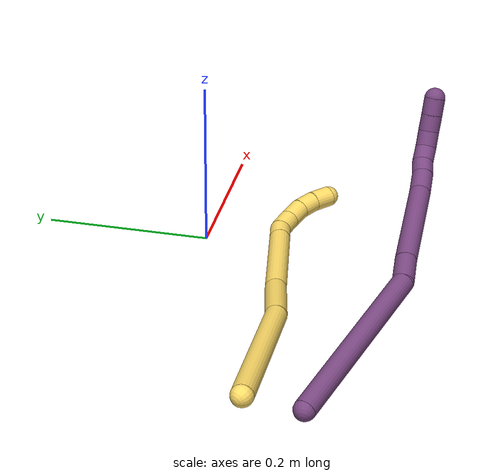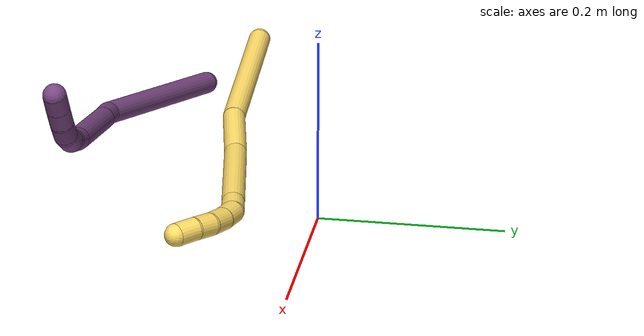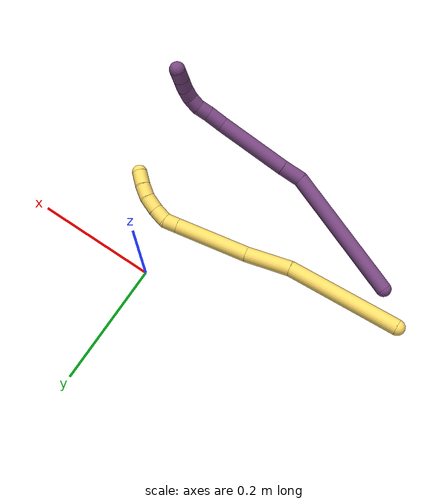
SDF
<sdf version="1.7">
 <world name="default">
  <model name="5">
   <static>0</static>
   <link name="5">
    <collision name="collision-cylinder-e_1_1_4">
     <pose>0.051833 -0.000489 0.076219 0.006413 0.597206 0.001974</pose>
     <geometry><cylinder><radius>0.0125</radius><length>0.18435</length></cylinder></geometry>
     <surface>
      <friction><ode><mu>1.16</mu><mu2>1.16</mu2><slip1>0</slip1><slip2>0</slip2></ode></friction>
      <contact><ode><kp>1e+06</kp><kd>1</kd><max_vel>0</max_vel><min_depth>0.001</min_depth></ode></contact>
     </surface>
    </collision>
    <visual name="visual-cylinder-e_1_1_4">
     <pose>0.051833 -0.000489 0.076219 0.006413 0.597206 0.001974</pose>
     <geometry><cylinder><radius>0.0125</radius><length>0.18435</length></cylinder></geometry>
     <material><ambient>1 0.858824 0.4 1</ambient></material>
    </visual>
    <collision name="collision-cylinder-e_2_4_5">
     <pose>0.129837 0.001488 0.17936 -0.09133 0.769162 -0.036986</pose>
     <geometry><cylinder><radius>0.0125</radius><length>0.075254</length></cylinder></geometry>
     <surface>
      <friction><ode><mu>1.16</mu><mu2>1.16</mu2><slip1>0</slip1><slip2>0</slip2></ode></friction>
      <contact><ode><kp>1e+06</kp><kd>1</kd><max_vel>0</max_vel><min_depth>0.001</min_depth></ode></contact>
     </surface>
    </collision>
    <visual name="visual-cylinder-e_2_4_5">
     <pose>0.129837 0.001488 0.17936 -0.09133 0.769162 -0.036986</pose>
     <geometry><cylinder><radius>0.0125</radius><length>0.075254</length></cylinder></geometry>
     <material><ambient>1 0.858824 0.4 1</ambient></material>
    </visual>
    <collision name="collision-cylinder-e_3_5_6">
     <pose>0.193559 0.012686 0.253413 -0.183196 0.66454 -0.06337</pose>
     <geometry><cylinder><radius>0.0125</radius><length>0.121782</length></cylinder></geometry>
     <surface>
      <friction><ode><mu>1.16</mu><mu2>1.16</mu2><slip1>0</slip1><slip2>0</slip2></ode></friction>
      <contact><ode><kp>1e+06</kp><kd>1</kd><max_vel>0</max_vel><min_depth>0.001</min_depth></ode></contact>
     </surface>
    </collision>
    <visual name="visual-cylinder-e_3_5_6">
     <pose>0.193559 0.012686 0.253413 -0.183196 0.66454 -0.06337</pose>
     <geometry><cylinder><radius>0.0125</radius><length>0.121782</length></cylinder></geometry>
     <material><ambient>1 0.858824 0.4 1</ambient></material>
    </visual>
    <collision name="collision-cylinder-e_4_6_7">
     <pose>0.237956 0.023377 0.309355 -0.218721 0.648879 -0.073822</pose>
     <geometry><cylinder><radius>0.0125</radius><length>0.022655</length></cylinder></geometry>
     <surface>
      <friction><ode><mu>1.16</mu><mu2>1.16</mu2><slip1>0</slip1><slip2>0</slip2></ode></friction>
      <contact><ode><kp>1e+06</kp><kd>1</kd><max_vel>0</max_vel><min_depth>0.001</min_depth></ode></contact>
     </surface>
    </collision>
    <visual name="visual-cylinder-e_4_6_7">
     <pose>0.237956 0.023377 0.309355 -0.218721 0.648879 -0.073822</pose>
     <geometry><cylinder><radius>0.0125</radius><length>0.022655</length></cylinder></geometry>
     <material><ambient>1 0.858824 0.4 1</ambient></material>
    </visual>
    <collision name="collision-cylinder-e_5_7_8">
     <pose>0.247824 0.025417 0.329647 -0.007154 0.257466 -0.000926</pose>
     <geometry><cylinder><radius>0.0125</radius><length>0.023747</length></cylinder></geometry>
     <surface>
      <friction><ode><mu>1.16</mu><mu2>1.16</mu2><slip1>0</slip1><slip2>0</slip2></ode></friction>
      <contact><ode><kp>1e+06</kp><kd>1</kd><max_vel>0</max_vel><min_depth>0.001</min_depth></ode></contact>
     </surface>
    </collision>
    <visual name="visual-cylinder-e_5_7_8">
     <pose>0.247824 0.025417 0.329647 -0.007154 0.257466 -0.000926</pose>
     <geometry><cylinder><radius>0.0125</radius><length>0.023747</length></cylinder></geometry>
     <material><ambient>1 0.858824 0.4 1</ambient></material>
    </visual>
    <collision name="collision-cylinder-e_6_8_9">
     <pose>0.252465 0.02556 0.353677 -0.004816 0.128164 -0.000309</pose>
     <geometry><cylinder><radius>0.0125</radius><length>0.025304</length></cylinder></geometry>
     <surface>
      <friction><ode><mu>1.16</mu><mu2>1.16</mu2><slip1>0</slip1><slip2>0</slip2></ode></friction>
      <contact><ode><kp>1e+06</kp><kd>1</kd><max_vel>0</max_vel><min_depth>0.001</min_depth></ode></contact>
     </surface>
    </collision>
    <visual name="visual-cylinder-e_6_8_9">
     <pose>0.252465 0.02556 0.353677 -0.004816 0.128164 -0.000309</pose>
     <geometry><cylinder><radius>0.0125</radius><length>0.025304</length></cylinder></geometry>
     <material><ambient>1 0.858824 0.4 1</ambient></material>
    </visual>
    <collision name="collision-cylinder-e_7_9_10">
     <pose>0.25342 0.023905 0.377263 0.154112 -0.059141 -0.004568</pose>
     <geometry><cylinder><radius>0.0125</radius><length>0.02238</length></cylinder></geometry>
     <surface>
      <friction><ode><mu>1.16</mu><mu2>1.16</mu2><slip1>0</slip1><slip2>0</slip2></ode></friction>
      <contact><ode><kp>1e+06</kp><kd>1</kd><max_vel>0</max_vel><min_depth>0.001</min_depth></ode></contact>
     </surface>
    </collision>
    <visual name="visual-cylinder-e_7_9_10">
     <pose>0.25342 0.023905 0.377263 0.154112 -0.059141 -0.004568</pose>
     <geometry><cylinder><radius>0.0125</radius><length>0.02238</length></cylinder></geometry>
     <material><ambient>1 0.858824 0.4 1</ambient></material>
    </visual>
    <collision name="collision-cylinder-e_8_10_2">
     <pose>0.251443 0.018533 0.399933 0.304618 -0.107517 -0.016519</pose>
     <geometry><cylinder><radius>0.0125</radius><length>0.024529</length></cylinder></geometry>
     <surface>
      <friction><ode><mu>1.16</mu><mu2>1.16</mu2><slip1>0</slip1><slip2>0</slip2></ode></friction>
      <contact><ode><kp>1e+06</kp><kd>1</kd><max_vel>0</max_vel><min_depth>0.001</min_depth></ode></contact>
     </surface>
    </collision>
    <visual name="visual-cylinder-e_8_10_2">
     <pose>0.251443 0.018533 0.399933 0.304618 -0.107517 -0.016519</pose>
     <geometry><cylinder><radius>0.0125</radius><length>0.024529</length></cylinder></geometry>
     <material><ambient>1 0.858824 0.4 1</ambient></material>
    </visual>
    <collision name="collision-sphere-2">
     <pose>0.250127 0.014876 0.411565 0 -0 0</pose>
     <geometry><sphere><radius>0.0125</radius></sphere></geometry>
     <surface>
      <friction><ode><mu>1.16</mu><mu2>1.16</mu2><slip1>0</slip1><slip2>0</slip2></ode></friction>
      <contact><ode><kp>1e+06</kp><kd>1</kd><max_vel>0</max_vel><min_depth>0.001</min_depth></ode></contact>
     </surface>
    </collision>
    <visual name="visual-sphere-2">
     <pose>0.250127 0.014876 0.411565 0 -0 0</pose>
     <geometry><sphere><radius>0.0125</radius></sphere></geometry>
     <material><ambient>1 0.858824 0.4 1</ambient></material>
    </visual>
    <collision name="collision-sphere-10">
     <pose>0.252759 0.022191 0.388301 0 -0 0</pose>
     <geometry><sphere><radius>0.0125</radius></sphere></geometry>
     <surface>
      <friction><ode><mu>1.16</mu><mu2>1.16</mu2><slip1>0</slip1><slip2>0</slip2></ode></friction>
      <contact><ode><kp>1e+06</kp><kd>1</kd><max_vel>0</max_vel><min_depth>0.001</min_depth></ode></contact>
     </surface>
    </collision>
    <visual name="visual-sphere-10">
     <pose>0.252759 0.022191 0.388301 0 -0 0</pose>
     <geometry><sphere><radius>0.0125</radius></sphere></geometry>
     <material><ambient>1 0.858824 0.4 1</ambient></material>
    </visual>
    <collision name="collision-sphere-9">
     <pose>0.254082 0.02562 0.366225 0 -0 0</pose>
     <geometry><sphere><radius>0.0125</radius></sphere></geometry>
     <surface>
      <friction><ode><mu>1.16</mu><mu2>1.16</mu2><slip1>0</slip1><slip2>0</slip2></ode></friction>
      <contact><ode><kp>1e+06</kp><kd>1</kd><max_vel>0</max_vel><min_depth>0.001</min_depth></ode></contact>
     </surface>
    </collision>
    <visual name="visual-sphere-9">
     <pose>0.254082 0.02562 0.366225 0 -0 0</pose>
     <geometry><sphere><radius>0.0125</radius></sphere></geometry>
     <material><ambient>1 0.858824 0.4 1</ambient></material>
    </visual>
    <collision name="collision-sphere-4">
     <pose>0.103666 -0.000978 0.152438 0 -0 0</pose>
     <geometry><sphere><radius>0.0125</radius></sphere></geometry>
     <surface>
      <friction><ode><mu>1.16</mu><mu2>1.16</mu2><slip1>0</slip1><slip2>0</slip2></ode></friction>
      <contact><ode><kp>1e+06</kp><kd>1</kd><max_vel>0</max_vel><min_depth>0.001</min_depth></ode></contact>
     </surface>
    </collision>
    <visual name="visual-sphere-4">
     <pose>0.103666 -0.000978 0.152438 0 -0 0</pose>
     <geometry><sphere><radius>0.0125</radius></sphere></geometry>
     <material><ambient>1 0.858824 0.4 1</ambient></material>
    </visual>
    <collision name="collision-sphere-1">
     <geometry><sphere><radius>0.0125</radius></sphere></geometry>
     <surface>
      <friction><ode><mu>1.16</mu><mu2>1.16</mu2><slip1>0</slip1><slip2>0</slip2></ode></friction>
      <contact><ode><kp>1e+06</kp><kd>1</kd><max_vel>0</max_vel><min_depth>0.001</min_depth></ode></contact>
     </surface>
    </collision>
    <visual name="visual-sphere-1">
     <geometry><sphere><radius>0.0125</radius></sphere></geometry>
     <material><ambient>1 0.858824 0.4 1</ambient></material>
    </visual>
    <collision name="collision-sphere-8">
     <pose>0.250848 0.025499 0.341129 0 -0 0</pose>
     <geometry><sphere><radius>0.0125</radius></sphere></geometry>
     <surface>
      <friction><ode><mu>1.16</mu><mu2>1.16</mu2><slip1>0</slip1><slip2>0</slip2></ode></friction>
      <contact><ode><kp>1e+06</kp><kd>1</kd><max_vel>0</max_vel><min_depth>0.001</min_depth></ode></contact>
     </surface>
    </collision>
    <visual name="visual-sphere-8">
     <pose>0.250848 0.025499 0.341129 0 -0 0</pose>
     <geometry><sphere><radius>0.0125</radius></sphere></geometry>
     <material><ambient>1 0.858824 0.4 1</ambient></material>
    </visual>
    <collision name="collision-sphere-5">
     <pose>0.156008 0.003954 0.206282 0 -0 0</pose>
     <geometry><sphere><radius>0.0125</radius></sphere></geometry>
     <surface>
      <friction><ode><mu>1.16</mu><mu2>1.16</mu2><slip1>0</slip1><slip2>0</slip2></ode></friction>
      <contact><ode><kp>1e+06</kp><kd>1</kd><max_vel>0</max_vel><min_depth>0.001</min_depth></ode></contact>
     </surface>
    </collision>
    <visual name="visual-sphere-5">
     <pose>0.156008 0.003954 0.206282 0 -0 0</pose>
     <geometry><sphere><radius>0.0125</radius></sphere></geometry>
     <material><ambient>1 0.858824 0.4 1</ambient></material>
    </visual>
    <collision name="collision-sphere-6">
     <pose>0.23111 0.021418 0.300544 0 -0 0</pose>
     <geometry><sphere><radius>0.0125</radius></sphere></geometry>
     <surface>
      <friction><ode><mu>1.16</mu><mu2>1.16</mu2><slip1>0</slip1><slip2>0</slip2></ode></friction>
      <contact><ode><kp>1e+06</kp><kd>1</kd><max_vel>0</max_vel><min_depth>0.001</min_depth></ode></contact>
     </surface>
    </collision>
    <visual name="visual-sphere-6">
     <pose>0.23111 0.021418 0.300544 0 -0 0</pose>
     <geometry><sphere><radius>0.0125</radius></sphere></geometry>
     <material><ambient>1 0.858824 0.4 1</ambient></material>
    </visual>
    <collision name="collision-sphere-7">
     <pose>0.244801 0.025335 0.318165 0 -0 0</pose>
     <geometry><sphere><radius>0.0125</radius></sphere></geometry>
     <surface>
      <friction><ode><mu>1.16</mu><mu2>1.16</mu2><slip1>0</slip1><slip2>0</slip2></ode></friction>
      <contact><ode><kp>1e+06</kp><kd>1</kd><max_vel>0</max_vel><min_depth>0.001</min_depth></ode></contact>
     </surface>
    </collision>
    <visual name="visual-sphere-7">
     <pose>0.244801 0.025335 0.318165 0 -0 0</pose>
     <geometry><sphere><radius>0.0125</radius></sphere></geometry>
     <material><ambient>1 0.858824 0.4 1</ambient></material>
    </visual>
    <inertial>
     <pose>0.144803 0.008673 0.200897 0 -0 0</pose>
     <mass>0.5</mass>
     <inertia>
      <ixx>0.000609</ixx>
      <ixy>0</ixy>
      <ixz>0</ixz>
      <iyy>0.000724</iyy>
      <iyz>0</iyz>
      <izz>-0.000411</izz>
     </inertia>
    </inertial>
   </link>
   <pose>-0.374907 -0.130184 0.053041 1.33659 0.540303 0.96723</pose>
  </model>
  <model name="20">
   <static>0</static>
   <link name="20">
    <collision name="collision-cylinder-e_1_1_4">
     <pose>-0.005976 -0.034094 0.103333 0.318701 -0.054867 -0.00882</pose>
     <geometry><cylinder><radius>0.0125</radius><length>0.217952</length></cylinder></geometry>
     <surface>
      <friction><ode><mu>1.16</mu><mu2>1.16</mu2><slip1>0</slip1><slip2>0</slip2></ode></friction>
      <contact><ode><kp>1e+06</kp><kd>1</kd><max_vel>0</max_vel><min_depth>0.001</min_depth></ode></contact>
     </surface>
    </collision>
    <visual name="visual-cylinder-e_1_1_4">
     <pose>-0.005976 -0.034094 0.103333 0.318701 -0.054867 -0.00882</pose>
     <geometry><cylinder><radius>0.0125</radius><length>0.217952</length></cylinder></geometry>
     <material><ambient>0.478431 0.278431 0.509804 1</ambient></material>
    </visual>
    <collision name="collision-cylinder-e_2_4_5">
     <pose>-0.010308 -0.067554 0.223986 -0.036624 0.094614 -0.001734</pose>
     <geometry><cylinder><radius>0.0125</radius><length>0.034821</length></cylinder></geometry>
     <surface>
      <friction><ode><mu>1.16</mu><mu2>1.16</mu2><slip1>0</slip1><slip2>0</slip2></ode></friction>
      <contact><ode><kp>1e+06</kp><kd>1</kd><max_vel>0</max_vel><min_depth>0.001</min_depth></ode></contact>
     </surface>
    </collision>
    <visual name="visual-cylinder-e_2_4_5">
     <pose>-0.010308 -0.067554 0.223986 -0.036624 0.094614 -0.001734</pose>
     <geometry><cylinder><radius>0.0125</radius><length>0.034821</length></cylinder></geometry>
     <material><ambient>0.478431 0.278431 0.509804 1</ambient></material>
    </visual>
    <collision name="collision-cylinder-e_3_5_6">
     <pose>-0.003631 -0.067935 0.300262 0.017232 0.085137 0.000734</pose>
     <geometry><cylinder><radius>0.0125</radius><length>0.118358</length></cylinder></geometry>
     <surface>
      <friction><ode><mu>1.16</mu><mu2>1.16</mu2><slip1>0</slip1><slip2>0</slip2></ode></friction>
      <contact><ode><kp>1e+06</kp><kd>1</kd><max_vel>0</max_vel><min_depth>0.001</min_depth></ode></contact>
     </surface>
    </collision>
    <visual name="visual-cylinder-e_3_5_6">
     <pose>-0.003631 -0.067935 0.300262 0.017232 0.085137 0.000734</pose>
     <geometry><cylinder><radius>0.0125</radius><length>0.118358</length></cylinder></geometry>
     <material><ambient>0.478431 0.278431 0.509804 1</ambient></material>
    </visual>
    <collision name="collision-cylinder-e_4_6_7">
     <pose>0.001088 -0.068017 0.373403 -0.065808 -0.022096 0.000727</pose>
     <geometry><cylinder><radius>0.0125</radius><length>0.028438</length></cylinder></geometry>
     <surface>
      <friction><ode><mu>1.16</mu><mu2>1.16</mu2><slip1>0</slip1><slip2>0</slip2></ode></friction>
      <contact><ode><kp>1e+06</kp><kd>1</kd><max_vel>0</max_vel><min_depth>0.001</min_depth></ode></contact>
     </surface>
    </collision>
    <visual name="visual-cylinder-e_4_6_7">
     <pose>0.001088 -0.068017 0.373403 -0.065808 -0.022096 0.000727</pose>
     <geometry><cylinder><radius>0.0125</radius><length>0.028438</length></cylinder></geometry>
     <material><ambient>0.478431 0.278431 0.509804 1</ambient></material>
    </visual>
    <collision name="collision-cylinder-e_5_7_8">
     <pose>0.000586 -0.065282 0.397427 -0.180938 -0.018763 0.001702</pose>
     <geometry><cylinder><radius>0.0125</radius><length>0.02001</length></cylinder></geometry>
     <surface>
      <friction><ode><mu>1.16</mu><mu2>1.16</mu2><slip1>0</slip1><slip2>0</slip2></ode></friction>
      <contact><ode><kp>1e+06</kp><kd>1</kd><max_vel>0</max_vel><min_depth>0.001</min_depth></ode></contact>
     </surface>
    </collision>
    <visual name="visual-cylinder-e_5_7_8">
     <pose>0.000586 -0.065282 0.397427 -0.180938 -0.018763 0.001702</pose>
     <geometry><cylinder><radius>0.0125</radius><length>0.02001</length></cylinder></geometry>
     <material><ambient>0.478431 0.278431 0.509804 1</ambient></material>
    </visual>
    <collision name="collision-cylinder-e_6_8_9">
     <pose>-0.002963 -0.062162 0.416646 -0.139797 -0.340955 0.024104</pose>
     <geometry><cylinder><radius>0.0125</radius><length>0.020101</length></cylinder></geometry>
     <surface>
      <friction><ode><mu>1.16</mu><mu2>1.16</mu2><slip1>0</slip1><slip2>0</slip2></ode></friction>
      <contact><ode><kp>1e+06</kp><kd>1</kd><max_vel>0</max_vel><min_depth>0.001</min_depth></ode></contact>
     </surface>
    </collision>
    <visual name="visual-cylinder-e_6_8_9">
     <pose>-0.002963 -0.062162 0.416646 -0.139797 -0.340955 0.024104</pose>
     <geometry><cylinder><radius>0.0125</radius><length>0.020101</length></cylinder></geometry>
     <material><ambient>0.478431 0.278431 0.509804 1</ambient></material>
    </visual>
    <collision name="collision-cylinder-e_7_9_10">
     <pose>-0.012618 -0.058087 0.43331 -0.361558 -0.679745 0.129076</pose>
     <geometry><cylinder><radius>0.0125</radius><length>0.020027</length></cylinder></geometry>
     <surface>
      <friction><ode><mu>1.16</mu><mu2>1.16</mu2><slip1>0</slip1><slip2>0</slip2></ode></friction>
      <contact><ode><kp>1e+06</kp><kd>1</kd><max_vel>0</max_vel><min_depth>0.001</min_depth></ode></contact>
     </surface>
    </collision>
    <visual name="visual-cylinder-e_7_9_10">
     <pose>-0.012618 -0.058087 0.43331 -0.361558 -0.679745 0.129076</pose>
     <geometry><cylinder><radius>0.0125</radius><length>0.020027</length></cylinder></geometry>
     <material><ambient>0.478431 0.278431 0.509804 1</ambient></material>
    </visual>
    <collision name="collision-cylinder-e_8_10_11">
     <pose>-0.026339 -0.052368 0.446742 -0.449276 -0.827652 0.200034</pose>
     <geometry><cylinder><radius>0.0125</radius><length>0.020172</length></cylinder></geometry>
     <surface>
      <friction><ode><mu>1.16</mu><mu2>1.16</mu2><slip1>0</slip1><slip2>0</slip2></ode></friction>
      <contact><ode><kp>1e+06</kp><kd>1</kd><max_vel>0</max_vel><min_depth>0.001</min_depth></ode></contact>
     </surface>
    </collision>
    <visual name="visual-cylinder-e_8_10_11">
     <pose>-0.026339 -0.052368 0.446742 -0.449276 -0.827652 0.200034</pose>
     <geometry><cylinder><radius>0.0125</radius><length>0.020172</length></cylinder></geometry>
     <material><ambient>0.478431 0.278431 0.509804 1</ambient></material>
    </visual>
    <collision name="collision-cylinder-e_9_11_2">
     <pose>-0.041098 -0.046309 0.459045 -0.465925 -0.816411 0.204523</pose>
     <geometry><cylinder><radius>0.0125</radius><length>0.020122</length></cylinder></geometry>
     <surface>
      <friction><ode><mu>1.16</mu><mu2>1.16</mu2><slip1>0</slip1><slip2>0</slip2></ode></friction>
      <contact><ode><kp>1e+06</kp><kd>1</kd><max_vel>0</max_vel><min_depth>0.001</min_depth></ode></contact>
     </surface>
    </collision>
    <visual name="visual-cylinder-e_9_11_2">
     <pose>-0.041098 -0.046309 0.459045 -0.465925 -0.816411 0.204523</pose>
     <geometry><cylinder><radius>0.0125</radius><length>0.020122</length></cylinder></geometry>
     <material><ambient>0.478431 0.278431 0.509804 1</ambient></material>
    </visual>
    <collision name="collision-sphere-2">
     <pose>-0.048429 -0.043214 0.4652 0 -0 0</pose>
     <geometry><sphere><radius>0.0125</radius></sphere></geometry>
     <surface>
      <friction><ode><mu>1.16</mu><mu2>1.16</mu2><slip1>0</slip1><slip2>0</slip2></ode></friction>
      <contact><ode><kp>1e+06</kp><kd>1</kd><max_vel>0</max_vel><min_depth>0.001</min_depth></ode></contact>
     </surface>
    </collision>
    <visual name="visual-sphere-2">
     <pose>-0.048429 -0.043214 0.4652 0 -0 0</pose>
     <geometry><sphere><radius>0.0125</radius></sphere></geometry>
     <material><ambient>0.478431 0.278431 0.509804 1</ambient></material>
    </visual>
    <collision name="collision-sphere-11">
     <pose>-0.033766 -0.049404 0.452889 0 -0 0</pose>
     <geometry><sphere><radius>0.0125</radius></sphere></geometry>
     <surface>
      <friction><ode><mu>1.16</mu><mu2>1.16</mu2><slip1>0</slip1><slip2>0</slip2></ode></friction>
      <contact><ode><kp>1e+06</kp><kd>1</kd><max_vel>0</max_vel><min_depth>0.001</min_depth></ode></contact>
     </surface>
    </collision>
    <visual name="visual-sphere-11">
     <pose>-0.033766 -0.049404 0.452889 0 -0 0</pose>
     <geometry><sphere><radius>0.0125</radius></sphere></geometry>
     <material><ambient>0.478431 0.278431 0.509804 1</ambient></material>
    </visual>
    <collision name="collision-sphere-10">
     <pose>-0.018913 -0.055332 0.440595 0 -0 0</pose>
     <geometry><sphere><radius>0.0125</radius></sphere></geometry>
     <surface>
      <friction><ode><mu>1.16</mu><mu2>1.16</mu2><slip1>0</slip1><slip2>0</slip2></ode></friction>
      <contact><ode><kp>1e+06</kp><kd>1</kd><max_vel>0</max_vel><min_depth>0.001</min_depth></ode></contact>
     </surface>
    </collision>
    <visual name="visual-sphere-10">
     <pose>-0.018913 -0.055332 0.440595 0 -0 0</pose>
     <geometry><sphere><radius>0.0125</radius></sphere></geometry>
     <material><ambient>0.478431 0.278431 0.509804 1</ambient></material>
    </visual>
    <collision name="collision-sphere-9">
     <pose>-0.006323 -0.060842 0.426026 0 -0 0</pose>
     <geometry><sphere><radius>0.0125</radius></sphere></geometry>
     <surface>
      <friction><ode><mu>1.16</mu><mu2>1.16</mu2><slip1>0</slip1><slip2>0</slip2></ode></friction>
      <contact><ode><kp>1e+06</kp><kd>1</kd><max_vel>0</max_vel><min_depth>0.001</min_depth></ode></contact>
     </surface>
    </collision>
    <visual name="visual-sphere-9">
     <pose>-0.006323 -0.060842 0.426026 0 -0 0</pose>
     <geometry><sphere><radius>0.0125</radius></sphere></geometry>
     <material><ambient>0.478431 0.278431 0.509804 1</ambient></material>
    </visual>
    <collision name="collision-sphere-4">
     <pose>-0.011952 -0.068189 0.206665 0 -0 0</pose>
     <geometry><sphere><radius>0.0125</radius></sphere></geometry>
     <surface>
      <friction><ode><mu>1.16</mu><mu2>1.16</mu2><slip1>0</slip1><slip2>0</slip2></ode></friction>
      <contact><ode><kp>1e+06</kp><kd>1</kd><max_vel>0</max_vel><min_depth>0.001</min_depth></ode></contact>
     </surface>
    </collision>
    <visual name="visual-sphere-4">
     <pose>-0.011952 -0.068189 0.206665 0 -0 0</pose>
     <geometry><sphere><radius>0.0125</radius></sphere></geometry>
     <material><ambient>0.478431 0.278431 0.509804 1</ambient></material>
    </visual>
    <collision name="collision-sphere-1">
     <geometry><sphere><radius>0.0125</radius></sphere></geometry>
     <surface>
      <friction><ode><mu>1.16</mu><mu2>1.16</mu2><slip1>0</slip1><slip2>0</slip2></ode></friction>
      <contact><ode><kp>1e+06</kp><kd>1</kd><max_vel>0</max_vel><min_depth>0.001</min_depth></ode></contact>
     </surface>
    </collision>
    <visual name="visual-sphere-1">
     <geometry><sphere><radius>0.0125</radius></sphere></geometry>
     <material><ambient>0.478431 0.278431 0.509804 1</ambient></material>
    </visual>
    <collision name="collision-sphere-8">
     <pose>0.000398 -0.063482 0.407267 0 -0 0</pose>
     <geometry><sphere><radius>0.0125</radius></sphere></geometry>
     <surface>
      <friction><ode><mu>1.16</mu><mu2>1.16</mu2><slip1>0</slip1><slip2>0</slip2></ode></friction>
      <contact><ode><kp>1e+06</kp><kd>1</kd><max_vel>0</max_vel><min_depth>0.001</min_depth></ode></contact>
     </surface>
    </collision>
    <visual name="visual-sphere-8">
     <pose>0.000398 -0.063482 0.407267 0 -0 0</pose>
     <geometry><sphere><radius>0.0125</radius></sphere></geometry>
     <material><ambient>0.478431 0.278431 0.509804 1</ambient></material>
    </visual>
    <collision name="collision-sphere-5">
     <pose>-0.008663 -0.066919 0.241307 0 -0 0</pose>
     <geometry><sphere><radius>0.0125</radius></sphere></geometry>
     <surface>
      <friction><ode><mu>1.16</mu><mu2>1.16</mu2><slip1>0</slip1><slip2>0</slip2></ode></friction>
      <contact><ode><kp>1e+06</kp><kd>1</kd><max_vel>0</max_vel><min_depth>0.001</min_depth></ode></contact>
     </surface>
    </collision>
    <visual name="visual-sphere-5">
     <pose>-0.008663 -0.066919 0.241307 0 -0 0</pose>
     <geometry><sphere><radius>0.0125</radius></sphere></geometry>
     <material><ambient>0.478431 0.278431 0.509804 1</ambient></material>
    </visual>
    <collision name="collision-sphere-6">
     <pose>0.001402 -0.068951 0.359218 0 -0 0</pose>
     <geometry><sphere><radius>0.0125</radius></sphere></geometry>
     <surface>
      <friction><ode><mu>1.16</mu><mu2>1.16</mu2><slip1>0</slip1><slip2>0</slip2></ode></friction>
      <contact><ode><kp>1e+06</kp><kd>1</kd><max_vel>0</max_vel><min_depth>0.001</min_depth></ode></contact>
     </surface>
    </collision>
    <visual name="visual-sphere-6">
     <pose>0.001402 -0.068951 0.359218 0 -0 0</pose>
     <geometry><sphere><radius>0.0125</radius></sphere></geometry>
     <material><ambient>0.478431 0.278431 0.509804 1</ambient></material>
    </visual>
    <collision name="collision-sphere-7">
     <pose>0.000773 -0.067082 0.387587 0 -0 0</pose>
     <geometry><sphere><radius>0.0125</radius></sphere></geometry>
     <surface>
      <friction><ode><mu>1.16</mu><mu2>1.16</mu2><slip1>0</slip1><slip2>0</slip2></ode></friction>
      <contact><ode><kp>1e+06</kp><kd>1</kd><max_vel>0</max_vel><min_depth>0.001</min_depth></ode></contact>
     </surface>
    </collision>
    <visual name="visual-sphere-7">
     <pose>0.000773 -0.067082 0.387587 0 -0 0</pose>
     <geometry><sphere><radius>0.0125</radius></sphere></geometry>
     <material><ambient>0.478431 0.278431 0.509804 1</ambient></material>
    </visual>
    <inertial>
     <pose>-0.007438 -0.050931 0.239464 0 -0 0</pose>
     <mass>0.5</mass>
     <inertia>
      <ixx>0.001015</ixx>
      <ixy>0</ixy>
      <ixz>0</ixz>
      <iyy>0.000975</iyy>
      <iyz>0</iyz>
      <izz>0.000348</izz>
     </inertia>
    </inertial>
   </link>
   <pose>-0.329868 -0.185327 0.012129 0.993962 1.01802 1.04084</pose>
  </model>
 </world>
</sdf>
